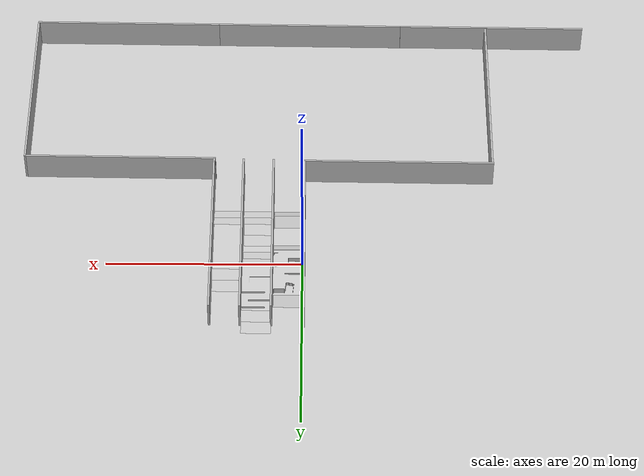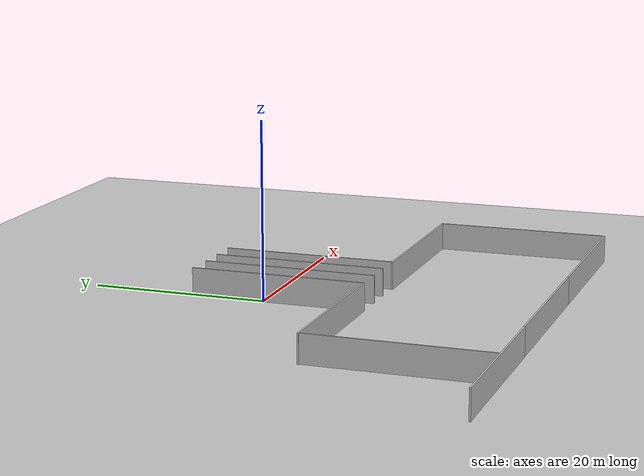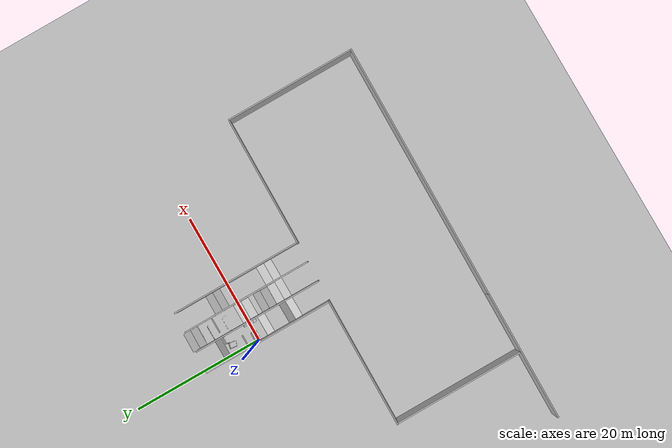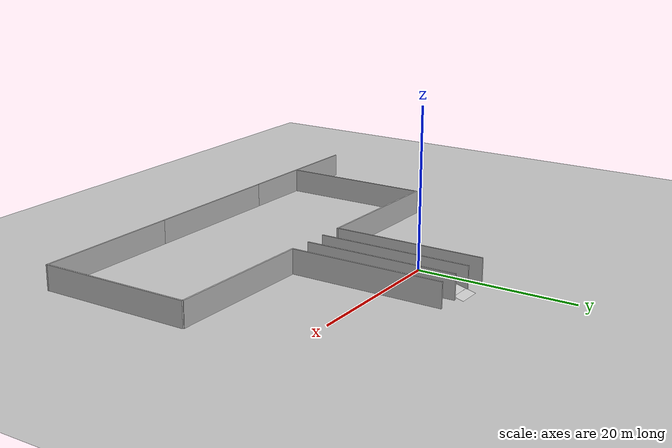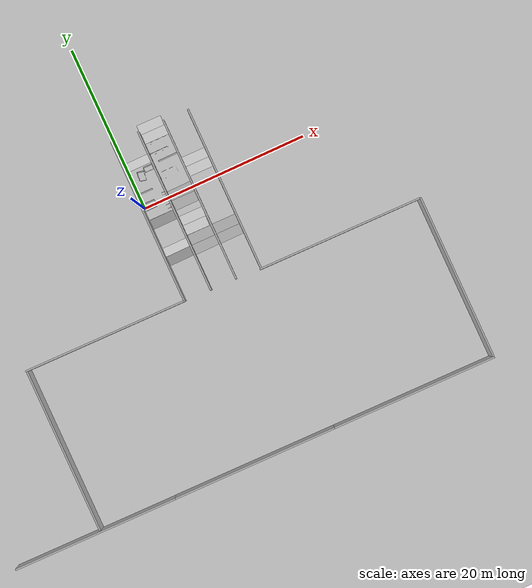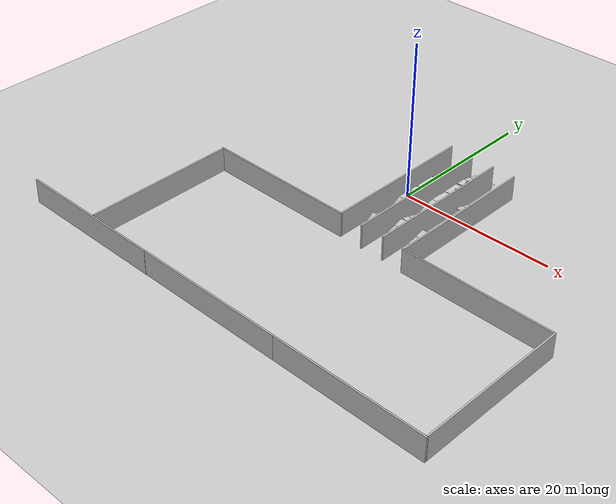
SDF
<sdf version="1.6">
 <world name="default">
  <light name="sun" type="directional">
   <pose>0 0 10 0 -0 0</pose>
   <diffuse>0.8 0.8 0.8 1</diffuse>
   <specular>0.2 0.2 0.2 1</specular>
   <attenuation>
    <range>1000</range>
    <constant>0.9</constant>
    <linear>0.01</linear>
    <quadratic>0.001</quadratic>
   </attenuation>
   <direction>-0.5 0.1 -0.9</direction>
  </light>
  <model name="ground_plane">
   <static>1</static>
   <link name="link">
    <collision name="collision">
     <geometry><plane><normal>0 0 1</normal><size>100 100</size></plane></geometry>
     <surface>
      <contact><collide_bitmask>65535</collide_bitmask></contact>
      <friction><ode><mu>100</mu><mu2>50</mu2></ode></friction>
     </surface>
    </collision>
    <visual name="visual">
     <cast_shadows>0</cast_shadows>
     <geometry><plane><normal>0 0 1</normal><size>100 100</size></plane></geometry>
     <material>
      <script><uri>file://media/materials/scripts/gazebo.material</uri><name>Gazebo/Grey</name></script>
     </material>
    </visual>
   </link>
  </model>
  <gravity>0 0 -9.8</gravity>
  <magnetic_field>6e-06 2.3e-05 -4.2e-05</magnetic_field>
  <atmosphere type="adiabatic"/>
  <physics name="default_physics" default="0" type="ode">
   <max_step_size>0.001</max_step_size>
   <real_time_factor>1</real_time_factor>
   <real_time_update_rate>1000</real_time_update_rate>
  </physics>
  <scene><ambient>0.4 0.4 0.4 1</ambient><background>0.7 0.7 0.7 1</background><shadows>1</shadows></scene>
  <audio><device>default</device></audio>
  <spherical_coordinates>
   <surface_model>EARTH_WGS84</surface_model>
   <latitude_deg>0</latitude_deg>
   <longitude_deg>0</longitude_deg>
   <elevation>0</elevation>
   <heading_deg>0</heading_deg>
  </spherical_coordinates>
  <model name="Wall_0">
   <static>1</static>
   <link name="link">
    <inertial>
     <pose>0 0 0.4 0 -0 0</pose>
     <mass>500</mass>
     <inertia><ixx>51.2096</ixx><iyy>51.2096</iyy><izz>25</izz><ixy>0</ixy><ixz>0</ixz><iyz>0</iyz></inertia>
    </inertial>
    <collision name="collision">
     <geometry><mesh><scale>1 1 1</scale><uri>model://wall/meshes/wall.dae</uri></mesh></geometry>
    </collision>
    <visual name="visual">
     <geometry><mesh><scale>1 1 1</scale><uri>model://wall/meshes/wall.dae</uri></mesh></geometry>
    </visual>
   </link>
   <pose>-0.159088 -1.63902 1.58297 0 -0 0</pose>
  </model>
  <model name="Ramp30Deg">
   <static>1</static>
   <link name="link">
    <gravity>0</gravity>
    <collision name="collision">
     <geometry><mesh><scale>1 1 1</scale><uri>model://ramp_30/meshes/ramp30.dae</uri></mesh></geometry>
    </collision>
    <visual name="visual">
     <geometry><mesh><scale>1 1 1</scale><uri>model://ramp_30/meshes/ramp30.dae</uri></mesh></geometry>
    </visual>
   </link>
   <pose>1.07893 -6.55019 0 0 -0 1.57492</pose>
  </model>
  <model name="Wall_0_clone">
   <static>1</static>
   <link name="link">
    <inertial>
     <pose>0 0 0.4 0 -0 0</pose>
     <mass>500</mass>
     <inertia><ixx>51.2096</ixx><iyy>51.2096</iyy><izz>25</izz><ixy>0</ixy><ixz>0</ixz><iyz>0</iyz></inertia>
    </inertial>
    <collision name="collision">
     <geometry><mesh><scale>1 1 1</scale><uri>model://wall/meshes/wall.dae</uri></mesh></geometry>
    </collision>
    <visual name="visual">
     <geometry><mesh><scale>1 1 1</scale><uri>model://wall/meshes/wall.dae</uri></mesh></geometry>
    </visual>
   </link>
   <pose>3.07524 -1.85559 1.58297 0 -0 0</pose>
  </model>
  <model name="Ramp30Deg_clone">
   <static>1</static>
   <link name="link">
    <gravity>0</gravity>
    <collision name="collision">
     <geometry><mesh><scale>1 1 1</scale><uri>model://ramp_30/meshes/ramp30.dae</uri></mesh></geometry>
    </collision>
    <visual name="visual">
     <geometry><mesh><scale>1 1 1</scale><uri>model://ramp_30/meshes/ramp30.dae</uri></mesh></geometry>
    </visual>
   </link>
   <pose>1.7833 -5.63338 0 0 0 -1.56203</pose>
  </model>
  <model name="Wall_0_clone_clone">
   <static>1</static>
   <link name="link">
    <inertial>
     <pose>0 0 0.4 0 -0 0</pose>
     <mass>500</mass>
     <inertia><ixx>51.2096</ixx><iyy>51.2096</iyy><izz>25</izz><ixy>0</ixy><ixz>0</ixz><iyz>0</iyz></inertia>
    </inertial>
    <collision name="collision">
     <geometry><mesh><scale>1 1 1</scale><uri>model://wall/meshes/wall.dae</uri></mesh></geometry>
    </collision>
    <visual name="visual">
     <geometry><mesh><scale>1 1 1</scale><uri>model://wall/meshes/wall.dae</uri></mesh></geometry>
    </visual>
   </link>
   <pose>6.20057 -1.86782 1.58297 0 -0 0</pose>
  </model>
  <model name="Ramp30Deg_0">
   <static>1</static>
   <link name="link">
    <gravity>0</gravity>
    <collision name="collision">
     <geometry><mesh><scale>1 1 1</scale><uri>model://ramp_30/meshes/ramp30.dae</uri></mesh></geometry>
    </collision>
    <visual name="visual">
     <geometry><mesh><scale>1 1 1</scale><uri>model://ramp_30/meshes/ramp30.dae</uri></mesh></geometry>
    </visual>
   </link>
   <pose>1.80588 -1.03859 0 0 0 -1.56513</pose>
  </model>
  <model name="Hole Board">
   <static>1</static>
   <link name="link">
    <inertial>
     <pose>0 0 0.4 0 -0 0</pose>
     <mass>500</mass>
     <inertia><ixx>51.2096</ixx><iyy>51.2096</iyy><izz>25</izz><ixy>0</ixy><ixz>0</ixz><iyz>0</iyz></inertia>
    </inertial>
    <collision name="collision">
     <geometry><mesh><scale>1 1 1</scale><uri>model://hole_board/meshes/hole_board.dae</uri></mesh></geometry>
    </collision>
    <visual name="visual">
     <geometry><mesh><scale>1 1 1</scale><uri>model://hole_board/meshes/hole_board.dae</uri></mesh></geometry>
    </visual>
   </link>
   <pose>1.47385 1.52476 0.598122 0 0 -1.57686</pose>
  </model>
  <model name="Ramp30Deg_0_clone">
   <static>1</static>
   <link name="link">
    <gravity>0</gravity>
    <collision name="collision">
     <geometry><mesh><scale>1 1 1</scale><uri>model://ramp_30/meshes/ramp30.dae</uri></mesh></geometry>
    </collision>
    <visual name="visual">
     <geometry><mesh><scale>1 1 1</scale><uri>model://ramp_30/meshes/ramp30.dae</uri></mesh></geometry>
    </visual>
   </link>
   <pose>1.07638 4.06304 -0.00265 0 -0 1.57033</pose>
  </model>
  <model name="Wall">
   <static>1</static>
   <link name="link">
    <inertial>
     <pose>0 0 0.4 0 -0 0</pose>
     <mass>500</mass>
     <inertia><ixx>51.2096</ixx><iyy>51.2096</iyy><izz>25</izz><ixy>0</ixy><ixz>0</ixz><iyz>0</iyz></inertia>
    </inertial>
    <collision name="collision">
     <geometry><mesh><scale>1 1 1</scale><uri>model://wall/meshes/wall.dae</uri></mesh></geometry>
    </collision>
    <visual name="visual">
     <geometry><mesh><scale>1 1 1</scale><uri>model://wall/meshes/wall.dae</uri></mesh></geometry>
    </visual>
   </link>
   <pose>9.26364 -1.92225 1.60059 0 -0 0</pose>
  </model>
  <model name="Ramp15Deg">
   <static>1</static>
   <link name="link">
    <gravity>0</gravity>
    <collision name="collision">
     <geometry><mesh><scale>1 1 1</scale><uri>model://ramp_15/meshes/ramp15.dae</uri></mesh></geometry>
    </collision>
    <visual name="visual">
     <geometry><mesh><scale>1 1 1</scale><uri>model://ramp_15/meshes/ramp15.dae</uri></mesh></geometry>
    </visual>
   </link>
   <pose>5.00715 -5.64219 0 0 0 -1.56788</pose>
  </model>
  <model name="Ramp15Deg_clone">
   <static>1</static>
   <link name="link">
    <gravity>0</gravity>
    <collision name="collision">
     <geometry><mesh><scale>1 1 1</scale><uri>model://ramp_15/meshes/ramp15.dae</uri></mesh></geometry>
    </collision>
    <visual name="visual">
     <geometry><mesh><scale>1 1 1</scale><uri>model://ramp_15/meshes/ramp15.dae</uri></mesh></geometry>
    </visual>
   </link>
   <pose>4.91011 -4.47616 0.344809 0 0 -1.58085</pose>
  </model>
  <model name="Ramp15Deg_clone_clone">
   <static>1</static>
   <link name="link">
    <gravity>0</gravity>
    <collision name="collision">
     <geometry><mesh><scale>1 1 1</scale><uri>model://ramp_15/meshes/ramp15.dae</uri></mesh></geometry>
    </collision>
    <visual name="visual">
     <geometry><mesh><scale>1 1 1</scale><uri>model://ramp_15/meshes/ramp15.dae</uri></mesh></geometry>
    </visual>
   </link>
   <pose>4.1483 -5.2413 0.389095 0 -0 1.55755</pose>
  </model>
  <model name="Ramp15Deg_clone_clone_clone">
   <static>1</static>
   <link name="link">
    <gravity>0</gravity>
    <collision name="collision">
     <geometry><mesh><scale>1 1 1</scale><uri>model://ramp_15/meshes/ramp15.dae</uri></mesh></geometry>
    </collision>
    <visual name="visual">
     <geometry><mesh><scale>1 1 1</scale><uri>model://ramp_15/meshes/ramp15.dae</uri></mesh></geometry>
    </visual>
   </link>
   <pose>4.19751 -4.06987 0.05345 0 -0 1.55755</pose>
  </model>
  <model name="Ramp15Deg_clone_clone_0">
   <static>1</static>
   <link name="link">
    <gravity>0</gravity>
    <collision name="collision">
     <geometry><mesh><scale>1 1 1</scale><uri>model://ramp_15/meshes/ramp15.dae</uri></mesh></geometry>
    </collision>
    <visual name="visual">
     <geometry><mesh><scale>1 1 1</scale><uri>model://ramp_15/meshes/ramp15.dae</uri></mesh></geometry>
    </visual>
   </link>
   <pose>4.92893 1.11069 0.344809 0 0 -1.58085</pose>
  </model>
  <model name="Ramp15Deg_clone_0">
   <static>1</static>
   <link name="link">
    <gravity>0</gravity>
    <collision name="collision">
     <geometry><mesh><scale>1 1 1</scale><uri>model://ramp_15/meshes/ramp15.dae</uri></mesh></geometry>
    </collision>
    <visual name="visual">
     <geometry><mesh><scale>1 1 1</scale><uri>model://ramp_15/meshes/ramp15.dae</uri></mesh></geometry>
    </visual>
   </link>
   <pose>4.89335 -0.074924 0 0 0 -1.56788</pose>
  </model>
  <model name="Hole Board Min">
   <static>1</static>
   <link name="link">
    <inertial>
     <pose>0 0 0.4 0 -0 0</pose>
     <mass>500</mass>
     <inertia><ixx>51.2096</ixx><iyy>51.2096</iyy><izz>25</izz><ixy>0</ixy><ixz>0</ixz><iyz>0</iyz></inertia>
    </inertial>
    <collision name="collision">
     <geometry>
      <mesh><scale>1 1 1</scale><uri>model://hole_board_min/meshes/hole_board_min.dae</uri></mesh>
     </geometry>
    </collision>
    <visual name="visual">
     <geometry>
      <mesh><scale>1 1 1</scale><uri>model://hole_board_min/meshes/hole_board_min.dae</uri></mesh>
     </geometry>
    </visual>
   </link>
   <pose>4.63782 3.65859 0.693754 0 0 -1.56665</pose>
  </model>
  <model name="Ramp15Deg_clone_clone_clone_clone">
   <static>1</static>
   <link name="link">
    <gravity>0</gravity>
    <collision name="collision">
     <geometry><mesh><scale>1 1 1</scale><uri>model://ramp_15/meshes/ramp15.dae</uri></mesh></geometry>
    </collision>
    <visual name="visual">
     <geometry><mesh><scale>1 1 1</scale><uri>model://ramp_15/meshes/ramp15.dae</uri></mesh></geometry>
    </visual>
   </link>
   <pose>4.24496 7.4299 0.05345 0 -0 1.55755</pose>
  </model>
  <model name="Ramp15Deg_clone_clone_clone_0">
   <static>1</static>
   <link name="link">
    <gravity>0</gravity>
    <collision name="collision">
     <geometry><mesh><scale>1 1 1</scale><uri>model://ramp_15/meshes/ramp15.dae</uri></mesh></geometry>
    </collision>
    <visual name="visual">
     <geometry><mesh><scale>1 1 1</scale><uri>model://ramp_15/meshes/ramp15.dae</uri></mesh></geometry>
    </visual>
   </link>
   <pose>4.3208 6.22018 0.389095 0 -0 1.55755</pose>
  </model>
  <model name="Wall_1">
   <static>1</static>
   <link name="link">
    <inertial>
     <pose>0 0 0.4 0 -0 0</pose>
     <mass>500</mass>
     <inertia><ixx>51.2096</ixx><iyy>51.2096</iyy><izz>25</izz><ixy>0</ixy><ixz>0</ixz><iyz>0</iyz></inertia>
    </inertial>
    <collision name="collision">
     <geometry><mesh><scale>1 1 1</scale><uri>model://wall/meshes/wall.dae</uri></mesh></geometry>
    </collision>
    <visual name="visual">
     <geometry><mesh><scale>1 1 1</scale><uri>model://wall/meshes/wall.dae</uri></mesh></geometry>
    </visual>
   </link>
   <pose>-9.91227 -11.4328 1.5777 0 0 -1.58397</pose>
  </model>
  <model name="Wall_1_clone">
   <static>1</static>
   <link name="link">
    <inertial>
     <pose>0 0 0.4 0 -0 0</pose>
     <mass>500</mass>
     <inertia><ixx>51.2096</ixx><iyy>51.2096</iyy><izz>25</izz><ixy>0</ixy><ixz>0</ixz><iyz>0</iyz></inertia>
    </inertial>
    <collision name="collision">
     <geometry><mesh><scale>1 1 1</scale><uri>model://wall/meshes/wall.dae</uri></mesh></geometry>
    </collision>
    <visual name="visual">
     <geometry><mesh><scale>1 1 1</scale><uri>model://wall/meshes/wall.dae</uri></mesh></geometry>
    </visual>
   </link>
   <pose>18.9747 -12.0022 1.5777 0 0 -1.58397</pose>
  </model>
  <model name="Wall_clone">
   <static>1</static>
   <link name="link">
    <inertial>
     <pose>0 0 0.4 0 -0 0</pose>
     <mass>500</mass>
     <inertia><ixx>51.2096</ixx><iyy>51.2096</iyy><izz>25</izz><ixy>0</ixy><ixz>0</ixz><iyz>0</iyz></inertia>
    </inertial>
    <collision name="collision">
     <geometry><mesh><scale>1 1 1</scale><uri>model://wall/meshes/wall.dae</uri></mesh></geometry>
    </collision>
    <visual name="visual">
     <geometry><mesh><scale>1 1 1</scale><uri>model://wall/meshes/wall.dae</uri></mesh></geometry>
    </visual>
   </link>
   <pose>28.9541 -21.9698 1.60059 0 -0 0</pose>
  </model>
  <model name="Wall_clone_0">
   <static>1</static>
   <link name="link">
    <inertial>
     <pose>0 0 0.4 0 -0 0</pose>
     <mass>500</mass>
     <inertia><ixx>51.2096</ixx><iyy>51.2096</iyy><izz>25</izz><ixy>0</ixy><ixz>0</ixz><iyz>0</iyz></inertia>
    </inertial>
    <collision name="collision">
     <geometry><mesh><scale>1 1 1</scale><uri>model://wall/meshes/wall.dae</uri></mesh></geometry>
    </collision>
    <visual name="visual">
     <geometry><mesh><scale>1 1 1</scale><uri>model://wall/meshes/wall.dae</uri></mesh></geometry>
    </visual>
   </link>
   <pose>-19.6488 -21.2994 1.60059 0 -0 0</pose>
  </model>
  <model name="Wall_1_clone_clone">
   <static>1</static>
   <link name="link">
    <inertial>
     <pose>0 0 0.4 0 -0 0</pose>
     <mass>500</mass>
     <inertia><ixx>51.2096</ixx><iyy>51.2096</iyy><izz>25</izz><ixy>0</ixy><ixz>0</ixz><iyz>0</iyz></inertia>
    </inertial>
    <collision name="collision">
     <geometry><mesh><scale>1 1 1</scale><uri>model://wall/meshes/wall.dae</uri></mesh></geometry>
    </collision>
    <visual name="visual">
     <geometry><mesh><scale>1 1 1</scale><uri>model://wall/meshes/wall.dae</uri></mesh></geometry>
    </visual>
   </link>
   <pose>19.1497 -31.8412 1.5777 0 0 -1.58397</pose>
  </model>
  <model name="Wall_1_clone_clone_0">
   <static>1</static>
   <link name="link">
    <inertial>
     <pose>0 0 0.4 0 -0 0</pose>
     <mass>500</mass>
     <inertia><ixx>51.2096</ixx><iyy>51.2096</iyy><izz>25</izz><ixy>0</ixy><ixz>0</ixz><iyz>0</iyz></inertia>
    </inertial>
    <collision name="collision">
     <geometry><mesh><scale>1 1 1</scale><uri>model://wall/meshes/wall.dae</uri></mesh></geometry>
    </collision>
    <visual name="visual">
     <geometry><mesh><scale>1 1 1</scale><uri>model://wall/meshes/wall.dae</uri></mesh></geometry>
    </visual>
   </link>
   <pose>-0.544928 -31.5823 1.5777 0 0 -1.58397</pose>
  </model>
  <model name="Wall_1_clone_clone_1">
   <static>1</static>
   <link name="link">
    <inertial>
     <pose>0 0 0.4 0 -0 0</pose>
     <mass>500</mass>
     <inertia><ixx>51.2096</ixx><iyy>51.2096</iyy><izz>25</izz><ixy>0</ixy><ixz>0</ixz><iyz>0</iyz></inertia>
    </inertial>
    <collision name="collision">
     <geometry><mesh><scale>1 1 1</scale><uri>model://wall/meshes/wall.dae</uri></mesh></geometry>
    </collision>
    <visual name="visual">
     <geometry><mesh><scale>1 1 1</scale><uri>model://wall/meshes/wall.dae</uri></mesh></geometry>
    </visual>
   </link>
   <pose>-20.3135 -31.3388 1.5777 0 0 -1.58397</pose>
  </model>
  <model name="Ramp15Deg_clone_1">
   <static>1</static>
   <link name="link">
    <gravity>0</gravity>
    <collision name="collision">
     <geometry><mesh><scale>1 1 1</scale><uri>model://ramp_15/meshes/ramp15.dae</uri></mesh></geometry>
    </collision>
    <visual name="visual">
     <geometry><mesh><scale>1 1 1</scale><uri>model://ramp_15/meshes/ramp15.dae</uri></mesh></geometry>
    </visual>
   </link>
   <pose>8.02516 -5.66604 0 0 0 -1.56788</pose>
  </model>
  <model name="Ramp15Deg_clone_clone_1">
   <static>1</static>
   <link name="link">
    <gravity>0</gravity>
    <collision name="collision">
     <geometry><mesh><scale>1 1 1</scale><uri>model://ramp_15/meshes/ramp15.dae</uri></mesh></geometry>
    </collision>
    <visual name="visual">
     <geometry><mesh><scale>1 1 1</scale><uri>model://ramp_15/meshes/ramp15.dae</uri></mesh></geometry>
    </visual>
   </link>
   <pose>8.05473 -4.47774 0.344809 0 0 -1.58085</pose>
  </model>
  <model name="Ramp15Deg_clone_clone_clone_clone_0">
   <static>1</static>
   <link name="link">
    <gravity>0</gravity>
    <collision name="collision">
     <geometry><mesh><scale>1 1 1</scale><uri>model://ramp_15/meshes/ramp15.dae</uri></mesh></geometry>
    </collision>
    <visual name="visual">
     <geometry><mesh><scale>1 1 1</scale><uri>model://ramp_15/meshes/ramp15.dae</uri></mesh></geometry>
    </visual>
   </link>
   <pose>7.34936 1.97938 0.018992 0 -0 1.55755</pose>
  </model>
  <model name="Ramp15Deg_clone_clone_clone_1">
   <static>1</static>
   <link name="link">
    <gravity>0</gravity>
    <collision name="collision">
     <geometry><mesh><scale>1 1 1</scale><uri>model://ramp_15/meshes/ramp15.dae</uri></mesh></geometry>
    </collision>
    <visual name="visual">
     <geometry><mesh><scale>1 1 1</scale><uri>model://ramp_15/meshes/ramp15.dae</uri></mesh></geometry>
    </visual>
   </link>
   <pose>7.34751 0.764078 0.363033 0 -0 1.55755</pose>
  </model>
 </world>
</sdf>
